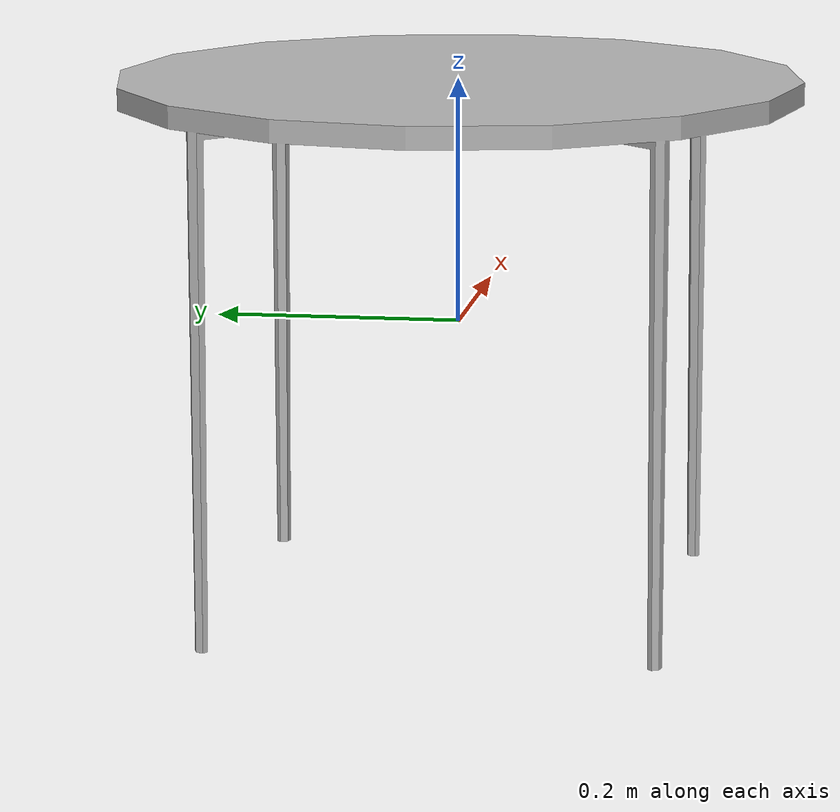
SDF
<?xml version='1.0'?>
<sdf version='1.5'>
    <model name="hall_table">
        <pose>0 0 0 0 0 0</pose>
        <static>false</static>
        <link name='model_body'>
            <visual name="visual">
                <geometry>
                    <mesh>
                        <uri>model://rs_gazebo/meshes/ss_hq4/hall_table/hall_table_visual.dae</uri>
                        <scale>1 1 1</scale>
                    </mesh>
                </geometry>
            </visual>

            <collision name="collision">
                <geometry>
                    <mesh>
                        <uri>model://rs_gazebo/meshes/ss_hq4/hall_table/hall_table_collision.stl</uri>
                        <scale>1 1 1</scale>
                    </mesh>
                </geometry>
            </collision>

            <inertial>
                <pose> 0 0 0 0 0 0</pose>
                <inertia>
                    <ixx>0.128275</ixx>
                    <ixy>0</ixy>
                    <ixz>0</ixz>
                    <iyy>0.128275</iyy>
                    <iyz>0</iyz>
                    <izz>0.21952</izz>
                </inertia>
                <mass>7.0</mass>
            </inertial>
        </link>
    </model>
</sdf>
